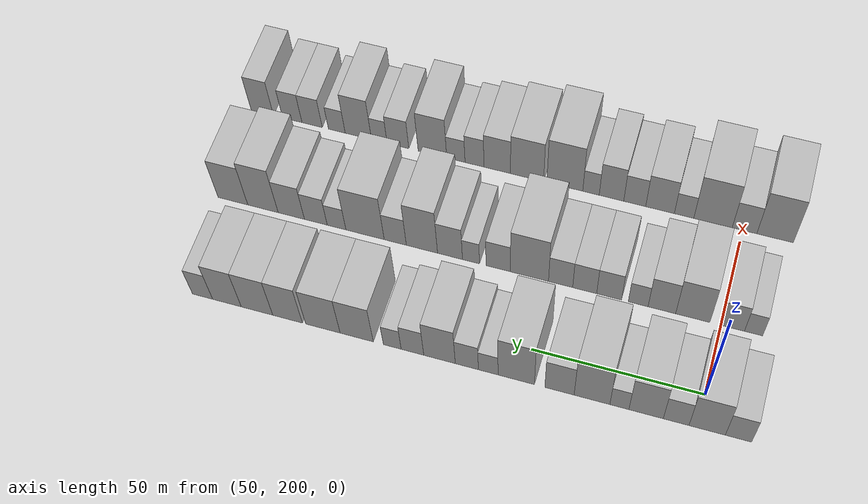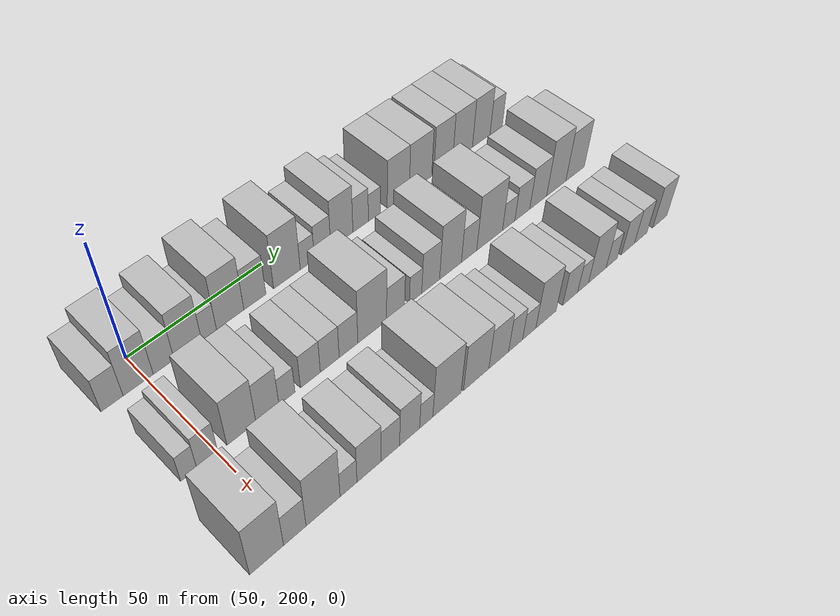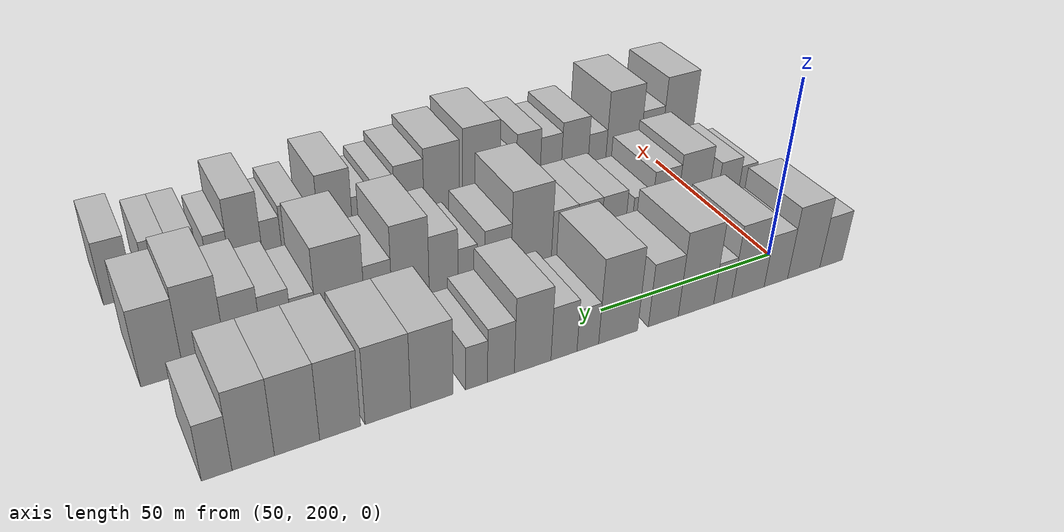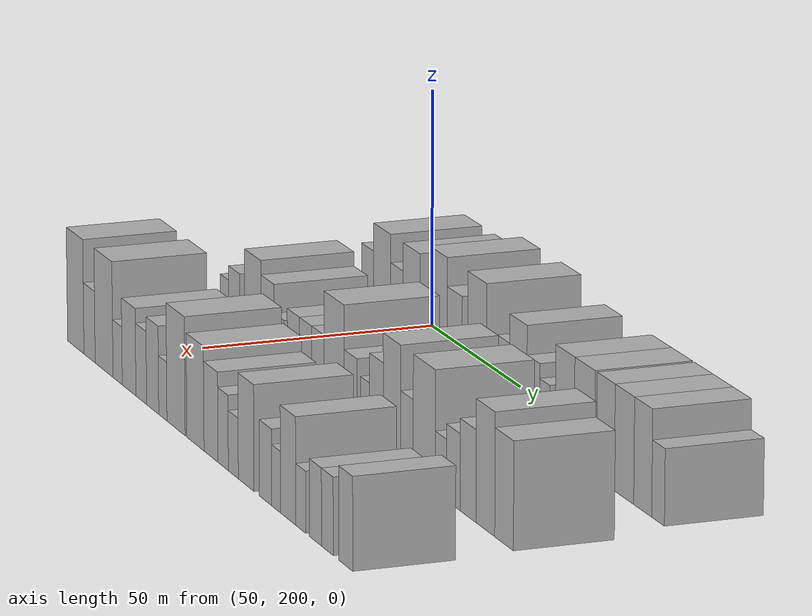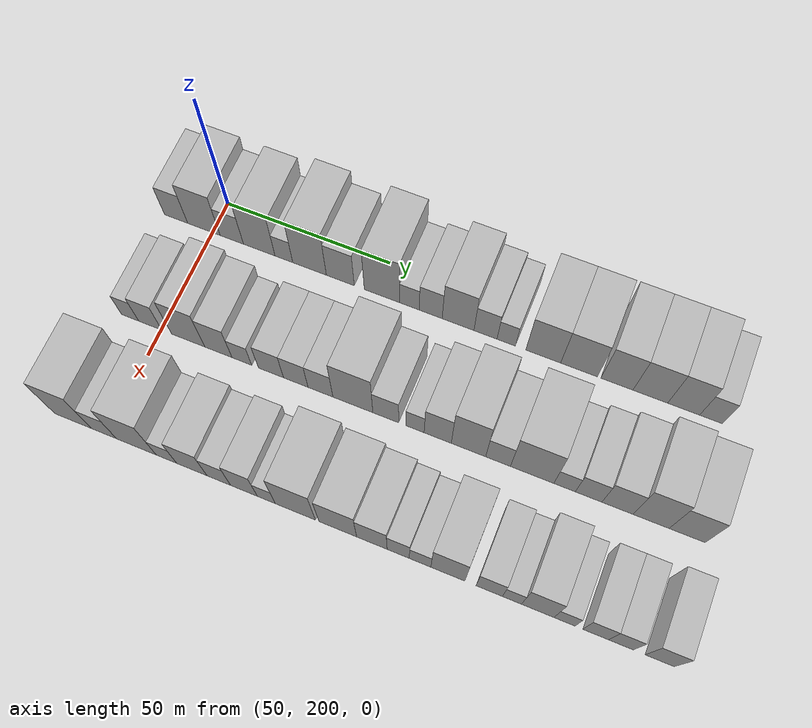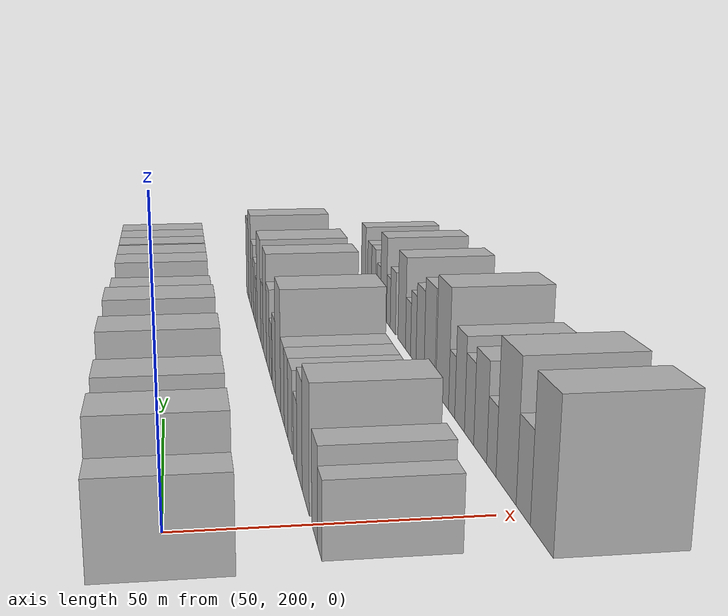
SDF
<sdf version="1.6">
 <world name="default">
  <model name="building_59">
   <static>1</static>
   <pose>50.0000 188.6106 0 0.000000 0.000000 0.000000</pose>
   <link name="link">
    <pose>0 0 7.50 0 0 0</pose>
    <collision name="collision"><geometry><box><size>20.0000 7.3075 15.0000</size></box></geometry></collision>
    <visual name="visual">
     <cast_shadows>0</cast_shadows>
     <geometry><box><size>20.0000 7.3075 15.0000</size></box></geometry>
     <material>
      <script>
       <uri>model://HANNAS_wall/materials/scripts</uri>
       <uri>model://HANNAS_wall/materials/textures</uri>
       <name>vrc/HANNAS_wall</name>
      </script>
     </material>
    </visual>
   </link>
  </model>
  <model name="building_60">
   <static>1</static>
   <pose>50.0000 197.3495 0 0.000000 0.000000 0.000000</pose>
   <link name="link">
    <pose>0 0 10.50 0 0 0</pose>
    <collision name="collision"><geometry><box><size>20.0000 10.1704 21.0000</size></box></geometry></collision>
    <visual name="visual">
     <cast_shadows>0</cast_shadows>
     <geometry><box><size>20.0000 10.1704 21.0000</size></box></geometry>
     <material>
      <script>
       <uri>model://HANNAS_wall/materials/scripts</uri>
       <uri>model://HANNAS_wall/materials/textures</uri>
       <name>vrc/HANNAS_wall</name>
      </script>
     </material>
    </visual>
   </link>
  </model>
  <model name="building_61">
   <static>1</static>
   <pose>50.0000 206.0465 0 0.000000 0.000000 0.000000</pose>
   <link name="link">
    <pose>0 0 7.50 0 0 0</pose>
    <collision name="collision"><geometry><box><size>20.0000 7.2235 15.0000</size></box></geometry></collision>
    <visual name="visual">
     <cast_shadows>0</cast_shadows>
     <geometry><box><size>20.0000 7.2235 15.0000</size></box></geometry>
     <material>
      <script>
       <uri>model://HANNAS_wall/materials/scripts</uri>
       <uri>model://HANNAS_wall/materials/textures</uri>
       <name>vrc/HANNAS_wall</name>
      </script>
     </material>
    </visual>
   </link>
  </model>
  <model name="building_62">
   <static>1</static>
   <pose>50.0000 214.5201 0 0.000000 0.000000 0.000000</pose>
   <link name="link">
    <pose>0 0 10.50 0 0 0</pose>
    <collision name="collision"><geometry><box><size>20.0000 9.7239 21.0000</size></box></geometry></collision>
    <visual name="visual">
     <cast_shadows>0</cast_shadows>
     <geometry><box><size>20.0000 9.7239 21.0000</size></box></geometry>
     <material>
      <script>
       <uri>model://HANNAS_wall/materials/scripts</uri>
       <uri>model://HANNAS_wall/materials/textures</uri>
       <name>vrc/HANNAS_wall</name>
      </script>
     </material>
    </visual>
   </link>
  </model>
  <model name="building_63">
   <static>1</static>
   <pose>50.0000 222.0867 0 0.000000 0.000000 0.000000</pose>
   <link name="link">
    <pose>0 0 6.00 0 0 0</pose>
    <collision name="collision"><geometry><box><size>20.0000 5.4093 12.0000</size></box></geometry></collision>
    <visual name="visual">
     <cast_shadows>0</cast_shadows>
     <geometry><box><size>20.0000 5.4093 12.0000</size></box></geometry>
     <material>
      <script>
       <uri>model://HANNAS_wall/materials/scripts</uri>
       <uri>model://HANNAS_wall/materials/textures</uri>
       <name>vrc/HANNAS_wall</name>
      </script>
     </material>
    </visual>
   </link>
  </model>
  <model name="building_64">
   <static>1</static>
   <pose>50.0000 229.8996 0 0.000000 0.000000 0.000000</pose>
   <link name="link">
    <pose>0 0 12.00 0 0 0</pose>
    <collision name="collision"><geometry><box><size>20.0000 10.2165 24.0000</size></box></geometry></collision>
    <visual name="visual">
     <cast_shadows>0</cast_shadows>
     <geometry><box><size>20.0000 10.2165 24.0000</size></box></geometry>
     <material>
      <script>
       <uri>model://HANNAS_wall/materials/scripts</uri>
       <uri>model://HANNAS_wall/materials/textures</uri>
       <name>vrc/HANNAS_wall</name>
      </script>
     </material>
    </visual>
   </link>
  </model>
  <model name="building_65">
   <static>1</static>
   <pose>50.0000 239.2114 0 0.000000 0.000000 0.000000</pose>
   <link name="link">
    <pose>0 0 9.00 0 0 0</pose>
    <collision name="collision"><geometry><box><size>20.0000 8.4070 18.0000</size></box></geometry></collision>
    <visual name="visual">
     <cast_shadows>0</cast_shadows>
     <geometry><box><size>20.0000 8.4070 18.0000</size></box></geometry>
     <material>
      <script>
       <uri>model://HANNAS_wall/materials/scripts</uri>
       <uri>model://HANNAS_wall/materials/textures</uri>
       <name>vrc/HANNAS_wall</name>
      </script>
     </material>
    </visual>
   </link>
  </model>
  <model name="building_66">
   <static>1</static>
   <pose>50.0000 251.6954 0 0.000000 0.000000 0.000000</pose>
   <link name="link">
    <pose>0 0 12.00 0 0 0</pose>
    <collision name="collision"><geometry><box><size>20.0000 10.5610 24.0000</size></box></geometry></collision>
    <visual name="visual">
     <cast_shadows>0</cast_shadows>
     <geometry><box><size>20.0000 10.5610 24.0000</size></box></geometry>
     <material>
      <script>
       <uri>model://HANNAS_wall/materials/scripts</uri>
       <uri>model://HANNAS_wall/materials/textures</uri>
       <name>vrc/HANNAS_wall</name>
      </script>
     </material>
    </visual>
   </link>
  </model>
  <model name="building_67">
   <static>1</static>
   <pose>50.0000 259.8414 0 0.000000 0.000000 0.000000</pose>
   <link name="link">
    <pose>0 0 6.00 0 0 0</pose>
    <collision name="collision"><geometry><box><size>20.0000 5.7311 12.0000</size></box></geometry></collision>
    <visual name="visual">
     <cast_shadows>0</cast_shadows>
     <geometry><box><size>20.0000 5.7311 12.0000</size></box></geometry>
     <material>
      <script>
       <uri>model://HANNAS_wall/materials/scripts</uri>
       <uri>model://HANNAS_wall/materials/textures</uri>
       <name>vrc/HANNAS_wall</name>
      </script>
     </material>
    </visual>
   </link>
  </model>
  <model name="building_68">
   <static>1</static>
   <pose>50.0000 266.0895 0 0.000000 0.000000 0.000000</pose>
   <link name="link">
    <pose>0 0 7.50 0 0 0</pose>
    <collision name="collision"><geometry><box><size>20.0000 6.7651 15.0000</size></box></geometry></collision>
    <visual name="visual">
     <cast_shadows>0</cast_shadows>
     <geometry><box><size>20.0000 6.7651 15.0000</size></box></geometry>
     <material>
      <script>
       <uri>model://HANNAS_wall/materials/scripts</uri>
       <uri>model://HANNAS_wall/materials/textures</uri>
       <name>vrc/HANNAS_wall</name>
      </script>
     </material>
    </visual>
   </link>
  </model>
  <model name="building_69">
   <static>1</static>
   <pose>50.0000 274.1195 0 0.000000 0.000000 0.000000</pose>
   <link name="link">
    <pose>0 0 10.50 0 0 0</pose>
    <collision name="collision"><geometry><box><size>20.0000 9.2948 21.0000</size></box></geometry></collision>
    <visual name="visual">
     <cast_shadows>0</cast_shadows>
     <geometry><box><size>20.0000 9.2948 21.0000</size></box></geometry>
     <material>
      <script>
       <uri>model://HANNAS_wall/materials/scripts</uri>
       <uri>model://HANNAS_wall/materials/textures</uri>
       <name>vrc/HANNAS_wall</name>
      </script>
     </material>
    </visual>
   </link>
  </model>
  <model name="building_70">
   <static>1</static>
   <pose>50.0000 282.1050 0 0.000000 0.000000 0.000000</pose>
   <link name="link">
    <pose>0 0 7.50 0 0 0</pose>
    <collision name="collision"><geometry><box><size>20.0000 6.6763 15.0000</size></box></geometry></collision>
    <visual name="visual">
     <cast_shadows>0</cast_shadows>
     <geometry><box><size>20.0000 6.6763 15.0000</size></box></geometry>
     <material>
      <script>
       <uri>model://HANNAS_wall/materials/scripts</uri>
       <uri>model://HANNAS_wall/materials/textures</uri>
       <name>vrc/HANNAS_wall</name>
      </script>
     </material>
    </visual>
   </link>
  </model>
  <model name="building_71">
   <static>1</static>
   <pose>50.0000 288.0936 0 0.000000 0.000000 0.000000</pose>
   <link name="link">
    <pose>0 0 6.00 0 0 0</pose>
    <collision name="collision"><geometry><box><size>20.0000 5.3007 12.0000</size></box></geometry></collision>
    <visual name="visual">
     <cast_shadows>0</cast_shadows>
     <geometry><box><size>20.0000 5.3007 12.0000</size></box></geometry>
     <material>
      <script>
       <uri>model://HANNAS_wall/materials/scripts</uri>
       <uri>model://HANNAS_wall/materials/textures</uri>
       <name>vrc/HANNAS_wall</name>
      </script>
     </material>
    </visual>
   </link>
  </model>
  <model name="building_72">
   <static>1</static>
   <pose>50.0000 298.7186 0 0.000000 0.000000 0.000000</pose>
   <link name="link">
    <pose>0 0 10.50 0 0 0</pose>
    <collision name="collision"><geometry><box><size>20.0000 9.9493 21.0000</size></box></geometry></collision>
    <visual name="visual">
     <cast_shadows>0</cast_shadows>
     <geometry><box><size>20.0000 9.9493 21.0000</size></box></geometry>
     <material>
      <script>
       <uri>model://HANNAS_wall/materials/scripts</uri>
       <uri>model://HANNAS_wall/materials/textures</uri>
       <name>vrc/HANNAS_wall</name>
      </script>
     </material>
    </visual>
   </link>
  </model>
  <model name="building_73">
   <static>1</static>
   <pose>50.0000 308.8854 0 0.000000 0.000000 0.000000</pose>
   <link name="link">
    <pose>0 0 10.50 0 0 0</pose>
    <collision name="collision"><geometry><box><size>20.0000 10.3844 21.0000</size></box></geometry></collision>
    <visual name="visual">
     <cast_shadows>0</cast_shadows>
     <geometry><box><size>20.0000 10.3844 21.0000</size></box></geometry>
     <material>
      <script>
       <uri>model://HANNAS_wall/materials/scripts</uri>
       <uri>model://HANNAS_wall/materials/textures</uri>
       <name>vrc/HANNAS_wall</name>
      </script>
     </material>
    </visual>
   </link>
  </model>
  <model name="building_74">
   <static>1</static>
   <pose>50.0000 319.5778 0 0.000000 0.000000 0.000000</pose>
   <link name="link">
    <pose>0 0 10.50 0 0 0</pose>
    <collision name="collision"><geometry><box><size>20.0000 9.0003 21.0000</size></box></geometry></collision>
    <visual name="visual">
     <cast_shadows>0</cast_shadows>
     <geometry><box><size>20.0000 9.0003 21.0000</size></box></geometry>
     <material>
      <script>
       <uri>model://HANNAS_wall/materials/scripts</uri>
       <uri>model://HANNAS_wall/materials/textures</uri>
       <name>vrc/HANNAS_wall</name>
      </script>
     </material>
    </visual>
   </link>
  </model>
  <model name="building_75">
   <static>1</static>
   <pose>50.0000 328.8992 0 0.000000 0.000000 0.000000</pose>
   <link name="link">
    <pose>0 0 10.50 0 0 0</pose>
    <collision name="collision"><geometry><box><size>20.0000 9.6426 21.0000</size></box></geometry></collision>
    <visual name="visual">
     <cast_shadows>0</cast_shadows>
     <geometry><box><size>20.0000 9.6426 21.0000</size></box></geometry>
     <material>
      <script>
       <uri>model://HANNAS_wall/materials/scripts</uri>
       <uri>model://HANNAS_wall/materials/textures</uri>
       <name>vrc/HANNAS_wall</name>
      </script>
     </material>
    </visual>
   </link>
  </model>
  <model name="building_76">
   <static>1</static>
   <pose>50.0000 338.1157 0 0.000000 0.000000 0.000000</pose>
   <link name="link">
    <pose>0 0 10.50 0 0 0</pose>
    <collision name="collision"><geometry><box><size>20.0000 8.7902 21.0000</size></box></geometry></collision>
    <visual name="visual">
     <cast_shadows>0</cast_shadows>
     <geometry><box><size>20.0000 8.7902 21.0000</size></box></geometry>
     <material>
      <script>
       <uri>model://HANNAS_wall/materials/scripts</uri>
       <uri>model://HANNAS_wall/materials/textures</uri>
       <name>vrc/HANNAS_wall</name>
      </script>
     </material>
    </visual>
   </link>
  </model>
  <model name="building_77">
   <static>1</static>
   <pose>50.0000 345.6230 0 0.000000 0.000000 0.000000</pose>
   <link name="link">
    <pose>0 0 7.50 0 0 0</pose>
    <collision name="collision"><geometry><box><size>20.0000 6.2245 15.0000</size></box></geometry></collision>
    <visual name="visual">
     <cast_shadows>0</cast_shadows>
     <geometry><box><size>20.0000 6.2245 15.0000</size></box></geometry>
     <material>
      <script>
       <uri>model://HANNAS_wall/materials/scripts</uri>
       <uri>model://HANNAS_wall/materials/textures</uri>
       <name>vrc/HANNAS_wall</name>
      </script>
     </material>
    </visual>
   </link>
  </model>
  <model name="building_138">
   <static>1</static>
   <pose>82.0000 190.5763 0 0.000000 0.000000 0.000000</pose>
   <link name="link">
    <pose>0 0 6.00 0 0 0</pose>
    <collision name="collision"><geometry><box><size>20.0000 5.2533 12.0000</size></box></geometry></collision>
    <visual name="visual">
     <cast_shadows>0</cast_shadows>
     <geometry><box><size>20.0000 5.2533 12.0000</size></box></geometry>
     <material>
      <script>
       <uri>model://HANNAS_wall/materials/scripts</uri>
       <uri>model://HANNAS_wall/materials/textures</uri>
       <name>vrc/HANNAS_wall</name>
      </script>
     </material>
    </visual>
   </link>
  </model>
  <model name="building_139">
   <static>1</static>
   <pose>82.0000 196.7098 0 0.000000 0.000000 0.000000</pose>
   <link name="link">
    <pose>0 0 7.50 0 0 0</pose>
    <collision name="collision"><geometry><box><size>20.0000 7.0137 15.0000</size></box></geometry></collision>
    <visual name="visual">
     <cast_shadows>0</cast_shadows>
     <geometry><box><size>20.0000 7.0137 15.0000</size></box></geometry>
     <material>
      <script>
       <uri>model://HANNAS_wall/materials/scripts</uri>
       <uri>model://HANNAS_wall/materials/textures</uri>
       <name>vrc/HANNAS_wall</name>
      </script>
     </material>
    </visual>
   </link>
  </model>
  <model name="building_140">
   <static>1</static>
   <pose>82.0000 208.2246 0 0.000000 0.000000 0.000000</pose>
   <link name="link">
    <pose>0 0 10.50 0 0 0</pose>
    <collision name="collision"><geometry><box><size>20.0000 10.0160 21.0000</size></box></geometry></collision>
    <visual name="visual">
     <cast_shadows>0</cast_shadows>
     <geometry><box><size>20.0000 10.0160 21.0000</size></box></geometry>
     <material>
      <script>
       <uri>model://HANNAS_wall/materials/scripts</uri>
       <uri>model://HANNAS_wall/materials/textures</uri>
       <name>vrc/HANNAS_wall</name>
      </script>
     </material>
    </visual>
   </link>
  </model>
  <model name="building_141">
   <static>1</static>
   <pose>82.0000 217.2858 0 0.000000 0.000000 0.000000</pose>
   <link name="link">
    <pose>0 0 9.00 0 0 0</pose>
    <collision name="collision"><geometry><box><size>20.0000 8.1064 18.0000</size></box></geometry></collision>
    <visual name="visual">
     <cast_shadows>0</cast_shadows>
     <geometry><box><size>20.0000 8.1064 18.0000</size></box></geometry>
     <material>
      <script>
       <uri>model://HANNAS_wall/materials/scripts</uri>
       <uri>model://HANNAS_wall/materials/textures</uri>
       <name>vrc/HANNAS_wall</name>
      </script>
     </material>
    </visual>
   </link>
  </model>
  <model name="building_142">
   <static>1</static>
   <pose>82.0000 224.2552 0 0.000000 0.000000 0.000000</pose>
   <link name="link">
    <pose>0 0 6.00 0 0 0</pose>
    <collision name="collision"><geometry><box><size>20.0000 5.8324 12.0000</size></box></geometry></collision>
    <visual name="visual">
     <cast_shadows>0</cast_shadows>
     <geometry><box><size>20.0000 5.8324 12.0000</size></box></geometry>
     <material>
      <script>
       <uri>model://HANNAS_wall/materials/scripts</uri>
       <uri>model://HANNAS_wall/materials/textures</uri>
       <name>vrc/HANNAS_wall</name>
      </script>
     </material>
    </visual>
   </link>
  </model>
  <model name="building_143">
   <static>1</static>
   <pose>82.0000 232.8582 0 0.000000 0.000000 0.000000</pose>
   <link name="link">
    <pose>0 0 7.50 0 0 0</pose>
    <collision name="collision"><geometry><box><size>20.0000 7.3736 15.0000</size></box></geometry></collision>
    <visual name="visual">
     <cast_shadows>0</cast_shadows>
     <geometry><box><size>20.0000 7.3736 15.0000</size></box></geometry>
     <material>
      <script>
       <uri>model://HANNAS_wall/materials/scripts</uri>
       <uri>model://HANNAS_wall/materials/textures</uri>
       <name>vrc/HANNAS_wall</name>
      </script>
     </material>
    </visual>
   </link>
  </model>
  <model name="building_144">
   <static>1</static>
   <pose>82.0000 240.1235 0 0.000000 0.000000 0.000000</pose>
   <link name="link">
    <pose>0 0 7.50 0 0 0</pose>
    <collision name="collision"><geometry><box><size>20.0000 7.1569 15.0000</size></box></geometry></collision>
    <visual name="visual">
     <cast_shadows>0</cast_shadows>
     <geometry><box><size>20.0000 7.1569 15.0000</size></box></geometry>
     <material>
      <script>
       <uri>model://HANNAS_wall/materials/scripts</uri>
       <uri>model://HANNAS_wall/materials/textures</uri>
       <name>vrc/HANNAS_wall</name>
      </script>
     </material>
    </visual>
   </link>
  </model>
  <model name="building_145">
   <static>1</static>
   <pose>82.0000 247.3236 0 0.000000 0.000000 0.000000</pose>
   <link name="link">
    <pose>0 0 7.50 0 0 0</pose>
    <collision name="collision"><geometry><box><size>20.0000 7.2432 15.0000</size></box></geometry></collision>
    <visual name="visual">
     <cast_shadows>0</cast_shadows>
     <geometry><box><size>20.0000 7.2432 15.0000</size></box></geometry>
     <material>
      <script>
       <uri>model://HANNAS_wall/materials/scripts</uri>
       <uri>model://HANNAS_wall/materials/textures</uri>
       <name>vrc/HANNAS_wall</name>
      </script>
     </material>
    </visual>
   </link>
  </model>
  <model name="building_146">
   <static>1</static>
   <pose>82.0000 256.6809 0 0.000000 0.000000 0.000000</pose>
   <link name="link">
    <pose>0 0 12.00 0 0 0</pose>
    <collision name="collision"><geometry><box><size>20.0000 11.4716 24.0000</size></box></geometry></collision>
    <visual name="visual">
     <cast_shadows>0</cast_shadows>
     <geometry><box><size>20.0000 11.4716 24.0000</size></box></geometry>
     <material>
      <script>
       <uri>model://HANNAS_wall/materials/scripts</uri>
       <uri>model://HANNAS_wall/materials/textures</uri>
       <name>vrc/HANNAS_wall</name>
      </script>
     </material>
    </visual>
   </link>
  </model>
  <model name="building_147">
   <static>1</static>
   <pose>82.0000 266.1076 0 0.000000 0.000000 0.000000</pose>
   <link name="link">
    <pose>0 0 7.50 0 0 0</pose>
    <collision name="collision"><geometry><box><size>20.0000 7.3818 15.0000</size></box></geometry></collision>
    <visual name="visual">
     <cast_shadows>0</cast_shadows>
     <geometry><box><size>20.0000 7.3818 15.0000</size></box></geometry>
     <material>
      <script>
       <uri>model://HANNAS_wall/materials/scripts</uri>
       <uri>model://HANNAS_wall/materials/textures</uri>
       <name>vrc/HANNAS_wall</name>
      </script>
     </material>
    </visual>
   </link>
  </model>
  <model name="building_148">
   <static>1</static>
   <pose>82.0000 274.3970 0 0.000000 0.000000 0.000000</pose>
   <link name="link">
    <pose>0 0 6.00 0 0 0</pose>
    <collision name="collision"><geometry><box><size>20.0000 5.1969 12.0000</size></box></geometry></collision>
    <visual name="visual">
     <cast_shadows>0</cast_shadows>
     <geometry><box><size>20.0000 5.1969 12.0000</size></box></geometry>
     <material>
      <script>
       <uri>model://HANNAS_wall/materials/scripts</uri>
       <uri>model://HANNAS_wall/materials/textures</uri>
       <name>vrc/HANNAS_wall</name>
      </script>
     </material>
    </visual>
   </link>
  </model>
  <model name="building_149">
   <static>1</static>
   <pose>82.0000 280.8125 0 0.000000 0.000000 0.000000</pose>
   <link name="link">
    <pose>0 0 9.00 0 0 0</pose>
    <collision name="collision"><geometry><box><size>20.0000 7.6342 18.0000</size></box></geometry></collision>
    <visual name="visual">
     <cast_shadows>0</cast_shadows>
     <geometry><box><size>20.0000 7.6342 18.0000</size></box></geometry>
     <material>
      <script>
       <uri>model://HANNAS_wall/materials/scripts</uri>
       <uri>model://HANNAS_wall/materials/textures</uri>
       <name>vrc/HANNAS_wall</name>
      </script>
     </material>
    </visual>
   </link>
  </model>
  <model name="building_150">
   <static>1</static>
   <pose>82.0000 289.4345 0 0.000000 0.000000 0.000000</pose>
   <link name="link">
    <pose>0 0 12.00 0 0 0</pose>
    <collision name="collision"><geometry><box><size>20.0000 9.6097 24.0000</size></box></geometry></collision>
    <visual name="visual">
     <cast_shadows>0</cast_shadows>
     <geometry><box><size>20.0000 9.6097 24.0000</size></box></geometry>
     <material>
      <script>
       <uri>model://HANNAS_wall/materials/scripts</uri>
       <uri>model://HANNAS_wall/materials/textures</uri>
       <name>vrc/HANNAS_wall</name>
      </script>
     </material>
    </visual>
   </link>
  </model>
  <model name="building_151">
   <static>1</static>
   <pose>82.0000 297.6751 0 0.000000 0.000000 0.000000</pose>
   <link name="link">
    <pose>0 0 7.50 0 0 0</pose>
    <collision name="collision"><geometry><box><size>20.0000 6.8715 15.0000</size></box></geometry></collision>
    <visual name="visual">
     <cast_shadows>0</cast_shadows>
     <geometry><box><size>20.0000 6.8715 15.0000</size></box></geometry>
     <material>
      <script>
       <uri>model://HANNAS_wall/materials/scripts</uri>
       <uri>model://HANNAS_wall/materials/textures</uri>
       <name>vrc/HANNAS_wall</name>
      </script>
     </material>
    </visual>
   </link>
  </model>
  <model name="building_152">
   <static>1</static>
   <pose>82.0000 307.0667 0 0.000000 0.000000 0.000000</pose>
   <link name="link">
    <pose>0 0 12.00 0 0 0</pose>
    <collision name="collision"><geometry><box><size>20.0000 11.9117 24.0000</size></box></geometry></collision>
    <visual name="visual">
     <cast_shadows>0</cast_shadows>
     <geometry><box><size>20.0000 11.9117 24.0000</size></box></geometry>
     <material>
      <script>
       <uri>model://HANNAS_wall/materials/scripts</uri>
       <uri>model://HANNAS_wall/materials/textures</uri>
       <name>vrc/HANNAS_wall</name>
      </script>
     </material>
    </visual>
   </link>
  </model>
  <model name="building_153">
   <static>1</static>
   <pose>82.0000 315.9483 0 0.000000 0.000000 0.000000</pose>
   <link name="link">
    <pose>0 0 6.00 0 0 0</pose>
    <collision name="collision"><geometry><box><size>20.0000 5.8514 12.0000</size></box></geometry></collision>
    <visual name="visual">
     <cast_shadows>0</cast_shadows>
     <geometry><box><size>20.0000 5.8514 12.0000</size></box></geometry>
     <material>
      <script>
       <uri>model://HANNAS_wall/materials/scripts</uri>
       <uri>model://HANNAS_wall/materials/textures</uri>
       <name>vrc/HANNAS_wall</name>
      </script>
     </material>
    </visual>
   </link>
  </model>
  <model name="building_154">
   <static>1</static>
   <pose>82.0000 322.4648 0 0.000000 0.000000 0.000000</pose>
   <link name="link">
    <pose>0 0 7.50 0 0 0</pose>
    <collision name="collision"><geometry><box><size>20.0000 7.1815 15.0000</size></box></geometry></collision>
    <visual name="visual">
     <cast_shadows>0</cast_shadows>
     <geometry><box><size>20.0000 7.1815 15.0000</size></box></geometry>
     <material>
      <script>
       <uri>model://HANNAS_wall/materials/scripts</uri>
       <uri>model://HANNAS_wall/materials/textures</uri>
       <name>vrc/HANNAS_wall</name>
      </script>
     </material>
    </visual>
   </link>
  </model>
  <model name="building_155">
   <static>1</static>
   <pose>82.0000 330.2174 0 0.000000 0.000000 0.000000</pose>
   <link name="link">
    <pose>0 0 9.00 0 0 0</pose>
    <collision name="collision"><geometry><box><size>20.0000 8.3238 18.0000</size></box></geometry></collision>
    <visual name="visual">
     <cast_shadows>0</cast_shadows>
     <geometry><box><size>20.0000 8.3238 18.0000</size></box></geometry>
     <material>
      <script>
       <uri>model://HANNAS_wall/materials/scripts</uri>
       <uri>model://HANNAS_wall/materials/textures</uri>
       <name>vrc/HANNAS_wall</name>
      </script>
     </material>
    </visual>
   </link>
  </model>
  <model name="building_156">
   <static>1</static>
   <pose>82.0000 339.2112 0 0.000000 0.000000 0.000000</pose>
   <link name="link">
    <pose>0 0 12.00 0 0 0</pose>
    <collision name="collision"><geometry><box><size>20.0000 9.6638 24.0000</size></box></geometry></collision>
    <visual name="visual">
     <cast_shadows>0</cast_shadows>
     <geometry><box><size>20.0000 9.6638 24.0000</size></box></geometry>
     <material>
      <script>
       <uri>model://HANNAS_wall/materials/scripts</uri>
       <uri>model://HANNAS_wall/materials/textures</uri>
       <name>vrc/HANNAS_wall</name>
      </script>
     </material>
    </visual>
   </link>
  </model>
  <model name="building_157">
   <static>1</static>
   <pose>82.0000 348.7908 0 0.000000 0.000000 0.000000</pose>
   <link name="link">
    <pose>0 0 10.50 0 0 0</pose>
    <collision name="collision"><geometry><box><size>20.0000 9.4952 21.0000</size></box></geometry></collision>
    <visual name="visual">
     <cast_shadows>0</cast_shadows>
     <geometry><box><size>20.0000 9.4952 21.0000</size></box></geometry>
     <material>
      <script>
       <uri>model://HANNAS_wall/materials/scripts</uri>
       <uri>model://HANNAS_wall/materials/textures</uri>
       <name>vrc/HANNAS_wall</name>
      </script>
     </material>
    </visual>
   </link>
  </model>
  <model name="building_220">
   <static>1</static>
   <pose>114.0000 190.2792 0 0.000000 0.000000 0.000000</pose>
   <link name="link">
    <pose>0 0 12.00 0 0 0</pose>
    <collision name="collision"><geometry><box><size>20.0000 10.9060 24.0000</size></box></geometry></collision>
    <visual name="visual">
     <cast_shadows>0</cast_shadows>
     <geometry><box><size>20.0000 10.9060 24.0000</size></box></geometry>
     <material>
      <script>
       <uri>model://HANNAS_wall/materials/scripts</uri>
       <uri>model://HANNAS_wall/materials/textures</uri>
       <name>vrc/HANNAS_wall</name>
      </script>
     </material>
    </visual>
   </link>
  </model>
  <model name="building_221">
   <static>1</static>
   <pose>114.0000 199.4388 0 0.000000 0.000000 0.000000</pose>
   <link name="link">
    <pose>0 0 7.50 0 0 0</pose>
    <collision name="collision"><geometry><box><size>20.0000 7.4132 15.0000</size></box></geometry></collision>
    <visual name="visual">
     <cast_shadows>0</cast_shadows>
     <geometry><box><size>20.0000 7.4132 15.0000</size></box></geometry>
     <material>
      <script>
       <uri>model://HANNAS_wall/materials/scripts</uri>
       <uri>model://HANNAS_wall/materials/textures</uri>
       <name>vrc/HANNAS_wall</name>
      </script>
     </material>
    </visual>
   </link>
  </model>
  <model name="building_222">
   <static>1</static>
   <pose>114.0000 208.9571 0 0.000000 0.000000 0.000000</pose>
   <link name="link">
    <pose>0 0 12.00 0 0 0</pose>
    <collision name="collision"><geometry><box><size>20.0000 11.6235 24.0000</size></box></geometry></collision>
    <visual name="visual">
     <cast_shadows>0</cast_shadows>
     <geometry><box><size>20.0000 11.6235 24.0000</size></box></geometry>
     <material>
      <script>
       <uri>model://HANNAS_wall/materials/scripts</uri>
       <uri>model://HANNAS_wall/materials/textures</uri>
       <name>vrc/HANNAS_wall</name>
      </script>
     </material>
    </visual>
   </link>
  </model>
  <model name="building_223">
   <static>1</static>
   <pose>114.0000 217.7240 0 0.000000 0.000000 0.000000</pose>
   <link name="link">
    <pose>0 0 6.00 0 0 0</pose>
    <collision name="collision"><geometry><box><size>20.0000 5.9103 12.0000</size></box></geometry></collision>
    <visual name="visual">
     <cast_shadows>0</cast_shadows>
     <geometry><box><size>20.0000 5.9103 12.0000</size></box></geometry>
     <material>
      <script>
       <uri>model://HANNAS_wall/materials/scripts</uri>
       <uri>model://HANNAS_wall/materials/textures</uri>
       <name>vrc/HANNAS_wall</name>
      </script>
     </material>
    </visual>
   </link>
  </model>
  <model name="building_224">
   <static>1</static>
   <pose>114.0000 225.0588 0 0.000000 0.000000 0.000000</pose>
   <link name="link">
    <pose>0 0 9.00 0 0 0</pose>
    <collision name="collision"><geometry><box><size>20.0000 8.7593 18.0000</size></box></geometry></collision>
    <visual name="visual">
     <cast_shadows>0</cast_shadows>
     <geometry><box><size>20.0000 8.7593 18.0000</size></box></geometry>
     <material>
      <script>
       <uri>model://HANNAS_wall/materials/scripts</uri>
       <uri>model://HANNAS_wall/materials/textures</uri>
       <name>vrc/HANNAS_wall</name>
      </script>
     </material>
    </visual>
   </link>
  </model>
  <model name="building_225">
   <static>1</static>
   <pose>114.0000 232.8127 0 0.000000 0.000000 0.000000</pose>
   <link name="link">
    <pose>0 0 7.50 0 0 0</pose>
    <collision name="collision"><geometry><box><size>20.0000 6.7485 15.0000</size></box></geometry></collision>
    <visual name="visual">
     <cast_shadows>0</cast_shadows>
     <geometry><box><size>20.0000 6.7485 15.0000</size></box></geometry>
     <material>
      <script>
       <uri>model://HANNAS_wall/materials/scripts</uri>
       <uri>model://HANNAS_wall/materials/textures</uri>
       <name>vrc/HANNAS_wall</name>
      </script>
     </material>
    </visual>
   </link>
  </model>
  <model name="building_226">
   <static>1</static>
   <pose>114.0000 239.9706 0 0.000000 0.000000 0.000000</pose>
   <link name="link">
    <pose>0 0 9.00 0 0 0</pose>
    <collision name="collision"><geometry><box><size>20.0000 7.5672 18.0000</size></box></geometry></collision>
    <visual name="visual">
     <cast_shadows>0</cast_shadows>
     <geometry><box><size>20.0000 7.5672 18.0000</size></box></geometry>
     <material>
      <script>
       <uri>model://HANNAS_wall/materials/scripts</uri>
       <uri>model://HANNAS_wall/materials/textures</uri>
       <name>vrc/HANNAS_wall</name>
      </script>
     </material>
    </visual>
   </link>
  </model>
  <model name="building_227">
   <static>1</static>
   <pose>114.0000 246.2991 0 0.000000 0.000000 0.000000</pose>
   <link name="link">
    <pose>0 0 6.00 0 0 0</pose>
    <collision name="collision"><geometry><box><size>20.0000 5.0898 12.0000</size></box></geometry></collision>
    <visual name="visual">
     <cast_shadows>0</cast_shadows>
     <geometry><box><size>20.0000 5.0898 12.0000</size></box></geometry>
     <material>
      <script>
       <uri>model://HANNAS_wall/materials/scripts</uri>
       <uri>model://HANNAS_wall/materials/textures</uri>
       <name>vrc/HANNAS_wall</name>
      </script>
     </material>
    </visual>
   </link>
  </model>
  <model name="building_228">
   <static>1</static>
   <pose>114.0000 254.4354 0 0.000000 0.000000 0.000000</pose>
   <link name="link">
    <pose>0 0 12.00 0 0 0</pose>
    <collision name="collision"><geometry><box><size>20.0000 11.1829 24.0000</size></box></geometry></collision>
    <visual name="visual">
     <cast_shadows>0</cast_shadows>
     <geometry><box><size>20.0000 11.1829 24.0000</size></box></geometry>
     <material>
      <script>
       <uri>model://HANNAS_wall/materials/scripts</uri>
       <uri>model://HANNAS_wall/materials/textures</uri>
       <name>vrc/HANNAS_wall</name>
      </script>
     </material>
    </visual>
   </link>
  </model>
  <model name="building_229">
   <static>1</static>
   <pose>114.0000 266.2298 0 0.000000 0.000000 0.000000</pose>
   <link name="link">
    <pose>0 0 10.50 0 0 0</pose>
    <collision name="collision"><geometry><box><size>20.0000 10.4058 21.0000</size></box></geometry></collision>
    <visual name="visual">
     <cast_shadows>0</cast_shadows>
     <geometry><box><size>20.0000 10.4058 21.0000</size></box></geometry>
     <material>
      <script>
       <uri>model://HANNAS_wall/materials/scripts</uri>
       <uri>model://HANNAS_wall/materials/textures</uri>
       <name>vrc/HANNAS_wall</name>
      </script>
     </material>
    </visual>
   </link>
  </model>
  <model name="building_230">
   <static>1</static>
   <pose>114.0000 275.6097 0 0.000000 0.000000 0.000000</pose>
   <link name="link">
    <pose>0 0 9.00 0 0 0</pose>
    <collision name="collision"><geometry><box><size>20.0000 8.3540 18.0000</size></box></geometry></collision>
    <visual name="visual">
     <cast_shadows>0</cast_shadows>
     <geometry><box><size>20.0000 8.3540 18.0000</size></box></geometry>
     <material>
      <script>
       <uri>model://HANNAS_wall/materials/scripts</uri>
       <uri>model://HANNAS_wall/materials/textures</uri>
       <name>vrc/HANNAS_wall</name>
      </script>
     </material>
    </visual>
   </link>
  </model>
  <model name="building_231">
   <static>1</static>
   <pose>114.0000 282.7976 0 0.000000 0.000000 0.000000</pose>
   <link name="link">
    <pose>0 0 7.50 0 0 0</pose>
    <collision name="collision"><geometry><box><size>20.0000 6.0217 15.0000</size></box></geometry></collision>
    <visual name="visual">
     <cast_shadows>0</cast_shadows>
     <geometry><box><size>20.0000 6.0217 15.0000</size></box></geometry>
     <material>
      <script>
       <uri>model://HANNAS_wall/materials/scripts</uri>
       <uri>model://HANNAS_wall/materials/textures</uri>
       <name>vrc/HANNAS_wall</name>
      </script>
     </material>
    </visual>
   </link>
  </model>
  <model name="building_232">
   <static>1</static>
   <pose>114.0000 288.7240 0 0.000000 0.000000 0.000000</pose>
   <link name="link">
    <pose>0 0 6.00 0 0 0</pose>
    <collision name="collision"><geometry><box><size>20.0000 5.8312 12.0000</size></box></geometry></collision>
    <visual name="visual">
     <cast_shadows>0</cast_shadows>
     <geometry><box><size>20.0000 5.8312 12.0000</size></box></geometry>
     <material>
      <script>
       <uri>model://HANNAS_wall/materials/scripts</uri>
       <uri>model://HANNAS_wall/materials/textures</uri>
       <name>vrc/HANNAS_wall</name>
      </script>
     </material>
    </visual>
   </link>
  </model>
  <model name="building_233">
   <static>1</static>
   <pose>114.0000 296.2073 0 0.000000 0.000000 0.000000</pose>
   <link name="link">
    <pose>0 0 10.50 0 0 0</pose>
    <collision name="collision"><geometry><box><size>20.0000 9.1352 21.0000</size></box></geometry></collision>
    <visual name="visual">
     <cast_shadows>0</cast_shadows>
     <geometry><box><size>20.0000 9.1352 21.0000</size></box></geometry>
     <material>
      <script>
       <uri>model://HANNAS_wall/materials/scripts</uri>
       <uri>model://HANNAS_wall/materials/textures</uri>
       <name>vrc/HANNAS_wall</name>
      </script>
     </material>
    </visual>
   </link>
  </model>
  <model name="building_234">
   <static>1</static>
   <pose>114.0000 307.2688 0 0.000000 0.000000 0.000000</pose>
   <link name="link">
    <pose>0 0 7.50 0 0 0</pose>
    <collision name="collision"><geometry><box><size>20.0000 6.9879 15.0000</size></box></geometry></collision>
    <visual name="visual">
     <cast_shadows>0</cast_shadows>
     <geometry><box><size>20.0000 6.9879 15.0000</size></box></geometry>
     <material>
      <script>
       <uri>model://HANNAS_wall/materials/scripts</uri>
       <uri>model://HANNAS_wall/materials/textures</uri>
       <name>vrc/HANNAS_wall</name>
      </script>
     </material>
    </visual>
   </link>
  </model>
  <model name="building_235">
   <static>1</static>
   <pose>114.0000 313.2852 0 0.000000 0.000000 0.000000</pose>
   <link name="link">
    <pose>0 0 6.00 0 0 0</pose>
    <collision name="collision"><geometry><box><size>20.0000 5.0448 12.0000</size></box></geometry></collision>
    <visual name="visual">
     <cast_shadows>0</cast_shadows>
     <geometry><box><size>20.0000 5.0448 12.0000</size></box></geometry>
     <material>
      <script>
       <uri>model://HANNAS_wall/materials/scripts</uri>
       <uri>model://HANNAS_wall/materials/textures</uri>
       <name>vrc/HANNAS_wall</name>
      </script>
     </material>
    </visual>
   </link>
  </model>
  <model name="building_236">
   <static>1</static>
   <pose>114.0000 320.0758 0 0.000000 0.000000 0.000000</pose>
   <link name="link">
    <pose>0 0 10.50 0 0 0</pose>
    <collision name="collision"><geometry><box><size>20.0000 8.5364 21.0000</size></box></geometry></collision>
    <visual name="visual">
     <cast_shadows>0</cast_shadows>
     <geometry><box><size>20.0000 8.5364 21.0000</size></box></geometry>
     <material>
      <script>
       <uri>model://HANNAS_wall/materials/scripts</uri>
       <uri>model://HANNAS_wall/materials/textures</uri>
       <name>vrc/HANNAS_wall</name>
      </script>
     </material>
    </visual>
   </link>
  </model>
  <model name="building_237">
   <static>1</static>
   <pose>114.0000 327.0870 0 0.000000 0.000000 0.000000</pose>
   <link name="link">
    <pose>0 0 6.00 0 0 0</pose>
    <collision name="collision"><geometry><box><size>20.0000 5.4860 12.0000</size></box></geometry></collision>
    <visual name="visual">
     <cast_shadows>0</cast_shadows>
     <geometry><box><size>20.0000 5.4860 12.0000</size></box></geometry>
     <material>
      <script>
       <uri>model://HANNAS_wall/materials/scripts</uri>
       <uri>model://HANNAS_wall/materials/textures</uri>
       <name>vrc/HANNAS_wall</name>
      </script>
     </material>
    </visual>
   </link>
  </model>
  <model name="building_238">
   <static>1</static>
   <pose>114.0000 335.1580 0 0.000000 0.000000 0.000000</pose>
   <link name="link">
    <pose>0 0 7.50 0 0 0</pose>
    <collision name="collision"><geometry><box><size>20.0000 6.6560 15.0000</size></box></geometry></collision>
    <visual name="visual">
     <cast_shadows>0</cast_shadows>
     <geometry><box><size>20.0000 6.6560 15.0000</size></box></geometry>
     <material>
      <script>
       <uri>model://HANNAS_wall/materials/scripts</uri>
       <uri>model://HANNAS_wall/materials/textures</uri>
       <name>vrc/HANNAS_wall</name>
      </script>
     </material>
    </visual>
   </link>
  </model>
  <model name="building_239">
   <static>1</static>
   <pose>114.0000 341.6690 0 0.000000 0.000000 0.000000</pose>
   <link name="link">
    <pose>0 0 7.50 0 0 0</pose>
    <collision name="collision"><geometry><box><size>20.0000 6.3660 15.0000</size></box></geometry></collision>
    <visual name="visual">
     <cast_shadows>0</cast_shadows>
     <geometry><box><size>20.0000 6.3660 15.0000</size></box></geometry>
     <material>
      <script>
       <uri>model://HANNAS_wall/materials/scripts</uri>
       <uri>model://HANNAS_wall/materials/textures</uri>
       <name>vrc/HANNAS_wall</name>
      </script>
     </material>
    </visual>
   </link>
  </model>
  <model name="building_240">
   <static>1</static>
   <pose>114.0000 351.5534 0 0.000000 0.000000 0.000000</pose>
   <link name="link">
    <pose>0 0 9.00 0 0 0</pose>
    <collision name="collision"><geometry><box><size>20.0000 7.4028 18.0000</size></box></geometry></collision>
    <visual name="visual">
     <cast_shadows>0</cast_shadows>
     <geometry><box><size>20.0000 7.4028 18.0000</size></box></geometry>
     <material>
      <script>
       <uri>model://HANNAS_wall/materials/scripts</uri>
       <uri>model://HANNAS_wall/materials/textures</uri>
       <name>vrc/HANNAS_wall</name>
      </script>
     </material>
    </visual>
   </link>
  </model>
 </world>
</sdf>
